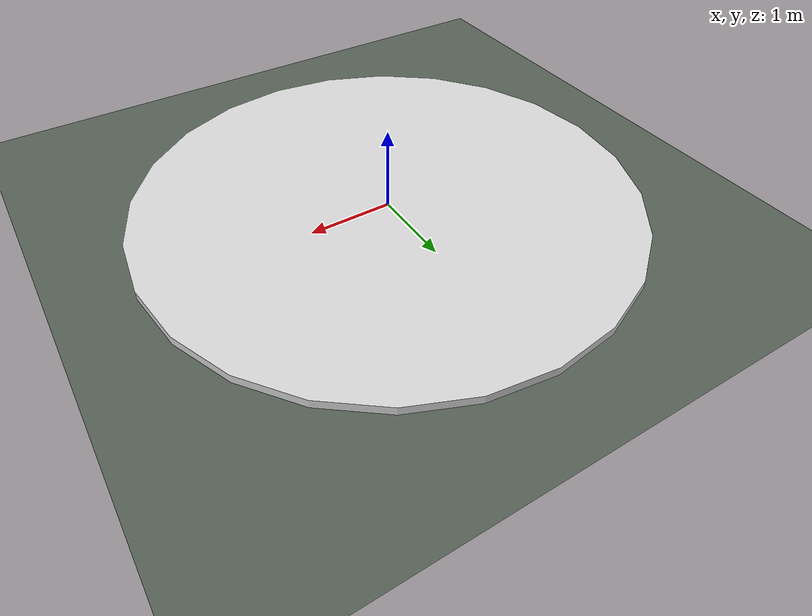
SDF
<?xml version="1.0" ?>
<!-- open_field: Level 1 navigation world. Flat ground, a landing pad, no obstacles.
     Physics/plugins and agents are injected by simapi.engine.gazebo.sdf.build_world_sdf. -->
<sdf version="1.9">
  <world name="open_field">
    <!-- @physics -->
    <gravity>0 0 -9.8</gravity>
    <spherical_coordinates>
      <surface_model>EARTH_WGS84</surface_model><world_frame_orientation>ENU</world_frame_orientation>
      <latitude_deg>47.3977</latitude_deg><longitude_deg>8.5456</longitude_deg><elevation>488.0</elevation><heading_deg>0</heading_deg>
    </spherical_coordinates>
    <scene><ambient>0.45 0.45 0.5 1</ambient><background>0.68 0.78 0.9 1</background><shadows>true</shadows></scene>
    <light type="directional" name="sun">
      <cast_shadows>true</cast_shadows><pose>0 0 60 0 0 0</pose>
      <diffuse>0.9 0.88 0.8 1</diffuse><specular>0.3 0.3 0.3 1</specular><direction>-0.4 0.3 -0.85</direction>
    </light>
    <model name="ground"><static>true</static><link name="link">
      <collision name="collision"><geometry><plane><normal>0 0 1</normal><size>400 400</size></plane></geometry>
        <surface><friction><ode><mu>100</mu><mu2>50</mu2></ode></friction></surface></collision>
      <visual name="visual"><geometry><plane><normal>0 0 1</normal><size>400 400</size></plane></geometry>
        <material><ambient>0.34 0.38 0.34 1</ambient><diffuse>0.34 0.38 0.34 1</diffuse><specular>0.05 0.05 0.05 1</specular></material></visual>
    </link></model>
    <model name="pad_alpha"><static>true</static><pose>0 0 0.05 0 0 0</pose><link name="link">
      <collision name="c"><geometry><cylinder><radius>3</radius><length>0.1</length></cylinder></geometry></collision>
      <visual name="v"><geometry><cylinder><radius>3</radius><length>0.1</length></cylinder></geometry>
        <material><ambient>0.85 0.85 0.85 1</ambient><diffuse>0.85 0.85 0.85 1</diffuse></material></visual>
    </link></model>
    <!-- @agents -->
  </world>
</sdf>
